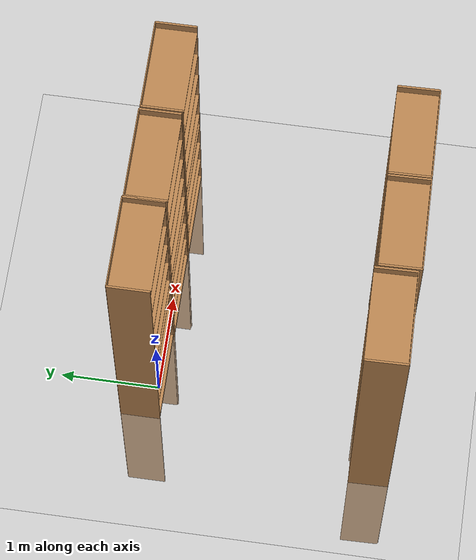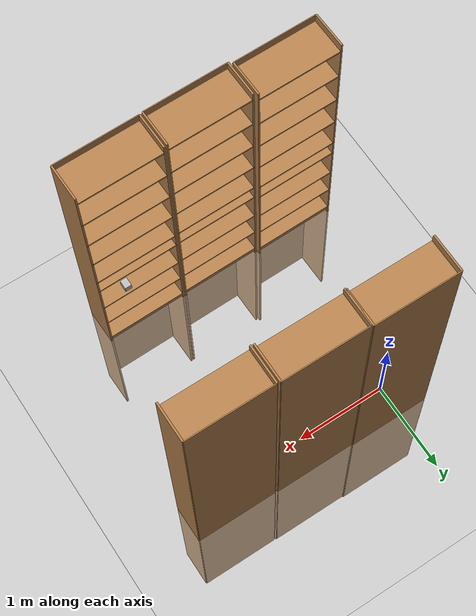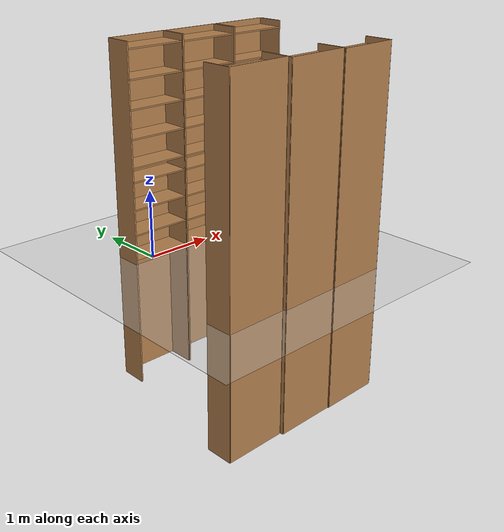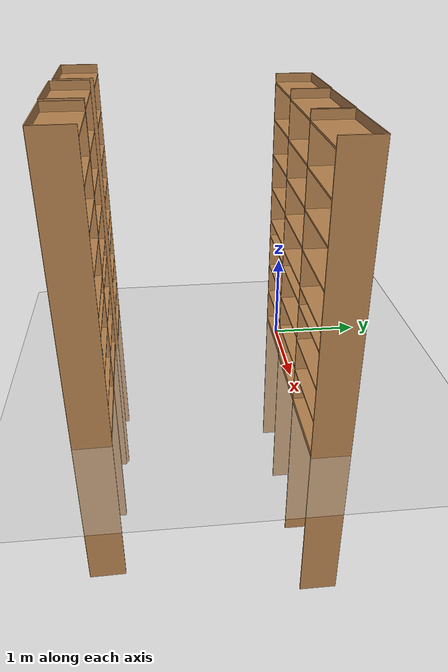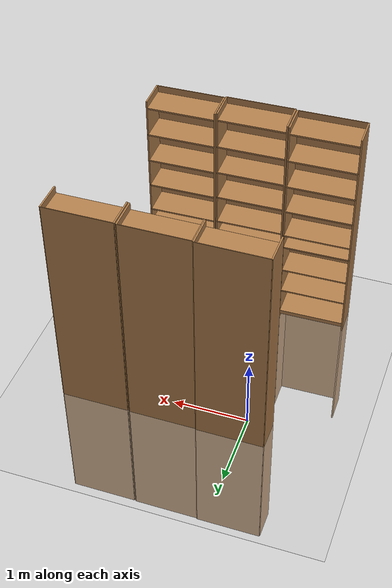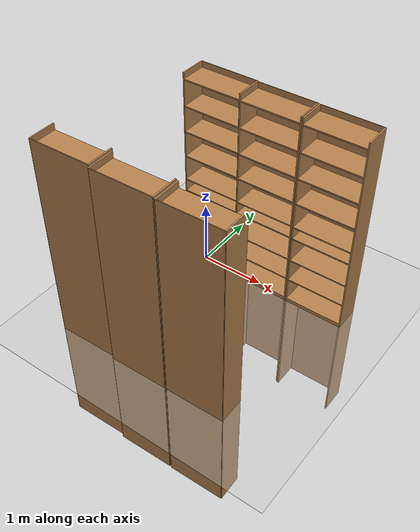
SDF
<sdf version="1.7">
 <world name="default">
  <model name="ground_plane">
   <static>1</static>
   <link name="link">
    <collision name="collision">
     <geometry><plane><normal>0 0 1</normal><size>100 100</size></plane></geometry>
     <surface><friction><ode><mu>100</mu><mu2>50</mu2></ode></friction></surface>
    </collision>
    <visual name="visual">
     <cast_shadows>0</cast_shadows>
     <geometry><plane><normal>0 0 1</normal><size>100 100</size></plane></geometry>
     <material>
      <script><uri>file://media/materials/scripts/gazebo.material</uri><name>Gazebo/Grey</name></script>
     </material>
    </visual>
   </link>
  </model>
  <light name="sun" type="directional">
   <pose>0 0 10 0 -0 0</pose>
   <diffuse>0.8 0.8 0.8 1</diffuse>
   <specular>0.2 0.2 0.2 1</specular>
   <attenuation>
    <range>1000</range>
    <constant>0.9</constant>
    <linear>0.01</linear>
    <quadratic>0.001</quadratic>
   </attenuation>
   <direction>-0.5 0.1 -0.9</direction>
   <spot><inner_angle>0</inner_angle><outer_angle>0</outer_angle><falloff>0</falloff></spot>
  </light>
  <scene><shadows>0</shadows><ambient>0.4 0.4 0.4 1</ambient><background>0.7 0.7 0.7 1</background></scene>
  <physics type="ode">
   <real_time_update_rate>1000</real_time_update_rate>
   <max_step_size>0.001</max_step_size>
   <real_time_factor>1</real_time_factor>
   <ode>
    <solver>
     <type>quick</type>
     <iters>150</iters>
     <precon_iters>0</precon_iters>
     <sor>1.4</sor>
     <use_dynamic_moi_rescaling>1</use_dynamic_moi_rescaling>
    </solver>
    <constraints>
     <cfm>1e-05</cfm>
     <erp>0.2</erp>
     <contact_max_correcting_vel>2000</contact_max_correcting_vel>
     <contact_surface_layer>0.01</contact_surface_layer>
    </constraints>
   </ode>
  </physics>
  <gravity>0 0 -9.8</gravity>
  <magnetic_field>6e-06 2.3e-05 -4.2e-05</magnetic_field>
  <atmosphere type="adiabatic"/>
  <audio><device>default</device></audio>
  <spherical_coordinates>
   <surface_model>EARTH_WGS84</surface_model>
   <latitude_deg>0</latitude_deg>
   <longitude_deg>0</longitude_deg>
   <elevation>0</elevation>
   <heading_deg>0</heading_deg>
  </spherical_coordinates>
  <model name="bookshelf_custom">
   <static>1</static>
   <link name="link">
    <inertial><mass>1</mass></inertial>
    <collision name="back">
     <pose>0 0.005 0.6 0 -0 0</pose>
     <geometry><box><size>0.9 0.01 5</size></box></geometry>
    </collision>
    <visual name="visual1">
     <pose>0 0.005 0.6 0 -0 0</pose>
     <geometry><box><size>0.9 0.01 5</size></box></geometry>
     <material>
      <script><uri>file://media/materials/scripts/gazebo.material</uri><name>Gazebo/Wood</name></script>
     </material>
    </visual>
    <collision name="left_side">
     <pose>0.45 -0.195 0.6 0 -0 0</pose>
     <geometry><box><size>0.02 0.4 5</size></box></geometry>
    </collision>
    <visual name="visual2">
     <pose>0.45 -0.195 0.6 0 -0 0</pose>
     <geometry><box><size>0.02 0.4 5</size></box></geometry>
     <material>
      <script><uri>file://media/materials/scripts/gazebo.material</uri><name>Gazebo/Wood</name></script>
     </material>
    </visual>
    <collision name="right_side">
     <pose>-0.45 -0.195 0.6 0 -0 0</pose>
     <geometry><box><size>0.02 0.4 5</size></box></geometry>
    </collision>
    <visual name="visual3">
     <pose>-0.45 -0.195 0.6 0 -0 0</pose>
     <geometry><box><size>0.02 0.4 5</size></box></geometry>
     <material>
      <script><uri>file://media/materials/scripts/gazebo.material</uri><name>Gazebo/Wood</name></script>
     </material>
    </visual>
    <collision name="bottom">
     <pose>0 -0.195 0.03 0 -0 0</pose>
     <geometry><box><size>0.88 0.4 0.06</size></box></geometry>
    </collision>
    <visual name="visual4">
     <pose>0 -0.195 0.03 0 -0 0</pose>
     <geometry><box><size>0.88 0.4 0.06</size></box></geometry>
     <material>
      <script><uri>file://media/materials/scripts/gazebo.material</uri><name>Gazebo/Wood</name></script>
     </material>
    </visual>
    <collision name="top">
     <pose>0 -0.195 3 0 -0 0</pose>
     <geometry><box><size>0.88 0.4 0.02</size></box></geometry>
    </collision>
    <visual name="visual5">
     <pose>0 -0.195 3 0 -0 0</pose>
     <geometry><box><size>0.88 0.4 0.02</size></box></geometry>
     <material>
      <script><uri>file://media/materials/scripts/gazebo.material</uri><name>Gazebo/Wood</name></script>
     </material>
    </visual>
    <collision name="low_shelf">
     <pose>0 -0.195 0.43 0 -0 0</pose>
     <geometry><box><size>0.88 0.4 0.02</size></box></geometry>
    </collision>
    <visual name="visual6">
     <pose>0 -0.195 0.43 0 -0 0</pose>
     <geometry><box><size>0.88 0.4 0.02</size></box></geometry>
     <material>
      <script><uri>file://media/materials/scripts/gazebo.material</uri><name>Gazebo/Wood</name></script>
     </material>
    </visual>
    <collision name="high_shelf">
     <pose>0 -0.195 0.8 0 -0 0</pose>
     <geometry><box><size>0.88 0.4 0.02</size></box></geometry>
    </collision>
    <visual name="visual7">
     <pose>0 -0.195 0.8 0 -0 0</pose>
     <geometry><box><size>0.88 0.4 0.02</size></box></geometry>
     <material>
      <script><uri>file://media/materials/scripts/gazebo.material</uri><name>Gazebo/Wood</name></script>
     </material>
    </visual>
    <collision name="shelf_1">
     <pose>0 -0.195 1.2 0 -0 0</pose>
     <geometry><box><size>0.9 0.4 0.02</size></box></geometry>
    </collision>
    <visual name="shelf_visual_1">
     <pose>0 -0.195 1.2 0 -0 0</pose>
     <geometry><box><size>0.9 0.4 0.02</size></box></geometry>
     <material>
      <script><uri>file://media/materials/scripts/gazebo.material</uri><name>Gazebo/Wood</name></script>
     </material>
    </visual>
    <collision name="shelf_2">
     <pose>0 -0.195 1.4 0 -0 0</pose>
     <geometry><box><size>0.9 0.4 0.02</size></box></geometry>
    </collision>
    <visual name="shelf_visual_2">
     <pose>0 -0.195 1.4 0 -0 0</pose>
     <geometry><box><size>0.9 0.4 0.02</size></box></geometry>
     <material>
      <script><uri>file://media/materials/scripts/gazebo.material</uri><name>Gazebo/Wood</name></script>
     </material>
    </visual>
    <collision name="shelf_3">
     <pose>0 -0.195 1.8 0 -0 0</pose>
     <geometry><box><size>0.9 0.4 0.02</size></box></geometry>
    </collision>
    <visual name="shelf_visual_3">
     <pose>0 -0.195 1.8 0 -0 0</pose>
     <geometry><box><size>0.9 0.4 0.02</size></box></geometry>
     <material>
      <script><uri>file://media/materials/scripts/gazebo.material</uri><name>Gazebo/Wood</name></script>
     </material>
    </visual>
    <collision name="shelf_4">
     <pose>0 -0.195 2.2 0 -0 0</pose>
     <geometry><box><size>0.9 0.4 0.02</size></box></geometry>
    </collision>
    <visual name="shelf_visual_4">
     <pose>0 -0.195 2.2 0 -0 0</pose>
     <geometry><box><size>0.9 0.4 0.02</size></box></geometry>
     <material>
      <script><uri>file://media/materials/scripts/gazebo.material</uri><name>Gazebo/Wood</name></script>
     </material>
    </visual>
    <collision name="shelf_5">
     <pose>0 -0.195 2.6 0 -0 0</pose>
     <geometry><box><size>0.9 0.4 0.02</size></box></geometry>
    </collision>
    <visual name="shelf_visual_5">
     <pose>0 -0.195 2.6 0 -0 0</pose>
     <geometry><box><size>0.9 0.4 0.02</size></box></geometry>
     <material>
      <script><uri>file://media/materials/scripts/gazebo.material</uri><name>Gazebo/Wood</name></script>
     </material>
    </visual>
   </link>
   <pose>0.132617 0.334854 0 0 -0 0</pose>
  </model>
  <model name="bookshelf_custom_0">
   <static>1</static>
   <link name="link">
    <inertial><mass>1</mass></inertial>
    <collision name="back">
     <pose>0 0.005 0.6 0 -0 0</pose>
     <geometry><box><size>0.9 0.01 5</size></box></geometry>
    </collision>
    <visual name="visual1">
     <pose>0 0.005 0.6 0 -0 0</pose>
     <geometry><box><size>0.9 0.01 5</size></box></geometry>
     <material>
      <script><uri>file://media/materials/scripts/gazebo.material</uri><name>Gazebo/Wood</name></script>
     </material>
    </visual>
    <collision name="left_side">
     <pose>0.45 -0.195 0.6 0 -0 0</pose>
     <geometry><box><size>0.02 0.4 5</size></box></geometry>
    </collision>
    <visual name="visual2">
     <pose>0.45 -0.195 0.6 0 -0 0</pose>
     <geometry><box><size>0.02 0.4 5</size></box></geometry>
     <material>
      <script><uri>file://media/materials/scripts/gazebo.material</uri><name>Gazebo/Wood</name></script>
     </material>
    </visual>
    <collision name="right_side">
     <pose>-0.45 -0.195 0.6 0 -0 0</pose>
     <geometry><box><size>0.02 0.4 5</size></box></geometry>
    </collision>
    <visual name="visual3">
     <pose>-0.45 -0.195 0.6 0 -0 0</pose>
     <geometry><box><size>0.02 0.4 5</size></box></geometry>
     <material>
      <script><uri>file://media/materials/scripts/gazebo.material</uri><name>Gazebo/Wood</name></script>
     </material>
    </visual>
    <collision name="bottom">
     <pose>0 -0.195 0.03 0 -0 0</pose>
     <geometry><box><size>0.88 0.4 0.06</size></box></geometry>
    </collision>
    <visual name="visual4">
     <pose>0 -0.195 0.03 0 -0 0</pose>
     <geometry><box><size>0.88 0.4 0.06</size></box></geometry>
     <material>
      <script><uri>file://media/materials/scripts/gazebo.material</uri><name>Gazebo/Wood</name></script>
     </material>
    </visual>
    <collision name="top">
     <pose>0 -0.195 3 0 -0 0</pose>
     <geometry><box><size>0.88 0.4 0.02</size></box></geometry>
    </collision>
    <visual name="visual5">
     <pose>0 -0.195 3 0 -0 0</pose>
     <geometry><box><size>0.88 0.4 0.02</size></box></geometry>
     <material>
      <script><uri>file://media/materials/scripts/gazebo.material</uri><name>Gazebo/Wood</name></script>
     </material>
    </visual>
    <collision name="low_shelf">
     <pose>0 -0.195 0.43 0 -0 0</pose>
     <geometry><box><size>0.88 0.4 0.02</size></box></geometry>
    </collision>
    <visual name="visual6">
     <pose>0 -0.195 0.43 0 -0 0</pose>
     <geometry><box><size>0.88 0.4 0.02</size></box></geometry>
     <material>
      <script><uri>file://media/materials/scripts/gazebo.material</uri><name>Gazebo/Wood</name></script>
     </material>
    </visual>
    <collision name="high_shelf">
     <pose>0 -0.195 0.8 0 -0 0</pose>
     <geometry><box><size>0.88 0.4 0.02</size></box></geometry>
    </collision>
    <visual name="visual7">
     <pose>0 -0.195 0.8 0 -0 0</pose>
     <geometry><box><size>0.88 0.4 0.02</size></box></geometry>
     <material>
      <script><uri>file://media/materials/scripts/gazebo.material</uri><name>Gazebo/Wood</name></script>
     </material>
    </visual>
    <collision name="shelf_1">
     <pose>0 -0.195 1.2 0 -0 0</pose>
     <geometry><box><size>0.9 0.4 0.02</size></box></geometry>
    </collision>
    <visual name="shelf_visual_1">
     <pose>0 -0.195 1.2 0 -0 0</pose>
     <geometry><box><size>0.9 0.4 0.02</size></box></geometry>
     <material>
      <script><uri>file://media/materials/scripts/gazebo.material</uri><name>Gazebo/Wood</name></script>
     </material>
    </visual>
    <collision name="shelf_2">
     <pose>0 -0.195 1.4 0 -0 0</pose>
     <geometry><box><size>0.9 0.4 0.02</size></box></geometry>
    </collision>
    <visual name="shelf_visual_2">
     <pose>0 -0.195 1.4 0 -0 0</pose>
     <geometry><box><size>0.9 0.4 0.02</size></box></geometry>
     <material>
      <script><uri>file://media/materials/scripts/gazebo.material</uri><name>Gazebo/Wood</name></script>
     </material>
    </visual>
    <collision name="shelf_3">
     <pose>0 -0.195 1.8 0 -0 0</pose>
     <geometry><box><size>0.9 0.4 0.02</size></box></geometry>
    </collision>
    <visual name="shelf_visual_3">
     <pose>0 -0.195 1.8 0 -0 0</pose>
     <geometry><box><size>0.9 0.4 0.02</size></box></geometry>
     <material>
      <script><uri>file://media/materials/scripts/gazebo.material</uri><name>Gazebo/Wood</name></script>
     </material>
    </visual>
    <collision name="shelf_4">
     <pose>0 -0.195 2.2 0 -0 0</pose>
     <geometry><box><size>0.9 0.4 0.02</size></box></geometry>
    </collision>
    <visual name="shelf_visual_4">
     <pose>0 -0.195 2.2 0 -0 0</pose>
     <geometry><box><size>0.9 0.4 0.02</size></box></geometry>
     <material>
      <script><uri>file://media/materials/scripts/gazebo.material</uri><name>Gazebo/Wood</name></script>
     </material>
    </visual>
    <collision name="shelf_5">
     <pose>0 -0.195 2.6 0 -0 0</pose>
     <geometry><box><size>0.9 0.4 0.02</size></box></geometry>
    </collision>
    <visual name="shelf_visual_5">
     <pose>0 -0.195 2.6 0 -0 0</pose>
     <geometry><box><size>0.9 0.4 0.02</size></box></geometry>
     <material>
      <script><uri>file://media/materials/scripts/gazebo.material</uri><name>Gazebo/Wood</name></script>
     </material>
    </visual>
   </link>
   <pose>1.04428 0.322976 0 0 -0 0</pose>
  </model>
  <model name="bookshelf_custom_1">
   <static>1</static>
   <link name="link">
    <inertial><mass>1</mass></inertial>
    <collision name="back">
     <pose>0 0.005 0.6 0 -0 0</pose>
     <geometry><box><size>0.9 0.01 5</size></box></geometry>
    </collision>
    <visual name="visual1">
     <pose>0 0.005 0.6 0 -0 0</pose>
     <geometry><box><size>0.9 0.01 5</size></box></geometry>
     <material>
      <script><uri>file://media/materials/scripts/gazebo.material</uri><name>Gazebo/Wood</name></script>
     </material>
    </visual>
    <collision name="left_side">
     <pose>0.45 -0.195 0.6 0 -0 0</pose>
     <geometry><box><size>0.02 0.4 5</size></box></geometry>
    </collision>
    <visual name="visual2">
     <pose>0.45 -0.195 0.6 0 -0 0</pose>
     <geometry><box><size>0.02 0.4 5</size></box></geometry>
     <material>
      <script><uri>file://media/materials/scripts/gazebo.material</uri><name>Gazebo/Wood</name></script>
     </material>
    </visual>
    <collision name="right_side">
     <pose>-0.45 -0.195 0.6 0 -0 0</pose>
     <geometry><box><size>0.02 0.4 5</size></box></geometry>
    </collision>
    <visual name="visual3">
     <pose>-0.45 -0.195 0.6 0 -0 0</pose>
     <geometry><box><size>0.02 0.4 5</size></box></geometry>
     <material>
      <script><uri>file://media/materials/scripts/gazebo.material</uri><name>Gazebo/Wood</name></script>
     </material>
    </visual>
    <collision name="bottom">
     <pose>0 -0.195 0.03 0 -0 0</pose>
     <geometry><box><size>0.88 0.4 0.06</size></box></geometry>
    </collision>
    <visual name="visual4">
     <pose>0 -0.195 0.03 0 -0 0</pose>
     <geometry><box><size>0.88 0.4 0.06</size></box></geometry>
     <material>
      <script><uri>file://media/materials/scripts/gazebo.material</uri><name>Gazebo/Wood</name></script>
     </material>
    </visual>
    <collision name="top">
     <pose>0 -0.195 3 0 -0 0</pose>
     <geometry><box><size>0.88 0.4 0.02</size></box></geometry>
    </collision>
    <visual name="visual5">
     <pose>0 -0.195 3 0 -0 0</pose>
     <geometry><box><size>0.88 0.4 0.02</size></box></geometry>
     <material>
      <script><uri>file://media/materials/scripts/gazebo.material</uri><name>Gazebo/Wood</name></script>
     </material>
    </visual>
    <collision name="low_shelf">
     <pose>0 -0.195 0.43 0 -0 0</pose>
     <geometry><box><size>0.88 0.4 0.02</size></box></geometry>
    </collision>
    <visual name="visual6">
     <pose>0 -0.195 0.43 0 -0 0</pose>
     <geometry><box><size>0.88 0.4 0.02</size></box></geometry>
     <material>
      <script><uri>file://media/materials/scripts/gazebo.material</uri><name>Gazebo/Wood</name></script>
     </material>
    </visual>
    <collision name="high_shelf">
     <pose>0 -0.195 0.8 0 -0 0</pose>
     <geometry><box><size>0.88 0.4 0.02</size></box></geometry>
    </collision>
    <visual name="visual7">
     <pose>0 -0.195 0.8 0 -0 0</pose>
     <geometry><box><size>0.88 0.4 0.02</size></box></geometry>
     <material>
      <script><uri>file://media/materials/scripts/gazebo.material</uri><name>Gazebo/Wood</name></script>
     </material>
    </visual>
    <collision name="shelf_1">
     <pose>0 -0.195 1.2 0 -0 0</pose>
     <geometry><box><size>0.9 0.4 0.02</size></box></geometry>
    </collision>
    <visual name="shelf_visual_1">
     <pose>0 -0.195 1.2 0 -0 0</pose>
     <geometry><box><size>0.9 0.4 0.02</size></box></geometry>
     <material>
      <script><uri>file://media/materials/scripts/gazebo.material</uri><name>Gazebo/Wood</name></script>
     </material>
    </visual>
    <collision name="shelf_2">
     <pose>0 -0.195 1.4 0 -0 0</pose>
     <geometry><box><size>0.9 0.4 0.02</size></box></geometry>
    </collision>
    <visual name="shelf_visual_2">
     <pose>0 -0.195 1.4 0 -0 0</pose>
     <geometry><box><size>0.9 0.4 0.02</size></box></geometry>
     <material>
      <script><uri>file://media/materials/scripts/gazebo.material</uri><name>Gazebo/Wood</name></script>
     </material>
    </visual>
    <collision name="shelf_3">
     <pose>0 -0.195 1.8 0 -0 0</pose>
     <geometry><box><size>0.9 0.4 0.02</size></box></geometry>
    </collision>
    <visual name="shelf_visual_3">
     <pose>0 -0.195 1.8 0 -0 0</pose>
     <geometry><box><size>0.9 0.4 0.02</size></box></geometry>
     <material>
      <script><uri>file://media/materials/scripts/gazebo.material</uri><name>Gazebo/Wood</name></script>
     </material>
    </visual>
    <collision name="shelf_4">
     <pose>0 -0.195 2.2 0 -0 0</pose>
     <geometry><box><size>0.9 0.4 0.02</size></box></geometry>
    </collision>
    <visual name="shelf_visual_4">
     <pose>0 -0.195 2.2 0 -0 0</pose>
     <geometry><box><size>0.9 0.4 0.02</size></box></geometry>
     <material>
      <script><uri>file://media/materials/scripts/gazebo.material</uri><name>Gazebo/Wood</name></script>
     </material>
    </visual>
    <collision name="shelf_5">
     <pose>0 -0.195 2.6 0 -0 0</pose>
     <geometry><box><size>0.9 0.4 0.02</size></box></geometry>
    </collision>
    <visual name="shelf_visual_5">
     <pose>0 -0.195 2.6 0 -0 0</pose>
     <geometry><box><size>0.9 0.4 0.02</size></box></geometry>
     <material>
      <script><uri>file://media/materials/scripts/gazebo.material</uri><name>Gazebo/Wood</name></script>
     </material>
    </visual>
   </link>
   <pose>1.97615 0.315546 0 0 -0 0</pose>
  </model>
  <model name="bookshelf_custom_1_clone">
   <static>1</static>
   <link name="link">
    <inertial><mass>1</mass></inertial>
    <collision name="back">
     <pose>0 0.005 0.6 0 -0 0</pose>
     <geometry><box><size>0.9 0.01 5</size></box></geometry>
    </collision>
    <visual name="visual1">
     <pose>0 0.005 0.6 0 -0 0</pose>
     <geometry><box><size>0.9 0.01 5</size></box></geometry>
     <material>
      <script><uri>file://media/materials/scripts/gazebo.material</uri><name>Gazebo/Wood</name></script>
     </material>
    </visual>
    <collision name="left_side">
     <pose>0.45 -0.195 0.6 0 -0 0</pose>
     <geometry><box><size>0.02 0.4 5</size></box></geometry>
    </collision>
    <visual name="visual2">
     <pose>0.45 -0.195 0.6 0 -0 0</pose>
     <geometry><box><size>0.02 0.4 5</size></box></geometry>
     <material>
      <script><uri>file://media/materials/scripts/gazebo.material</uri><name>Gazebo/Wood</name></script>
     </material>
    </visual>
    <collision name="right_side">
     <pose>-0.45 -0.195 0.6 0 -0 0</pose>
     <geometry><box><size>0.02 0.4 5</size></box></geometry>
    </collision>
    <visual name="visual3">
     <pose>-0.45 -0.195 0.6 0 -0 0</pose>
     <geometry><box><size>0.02 0.4 5</size></box></geometry>
     <material>
      <script><uri>file://media/materials/scripts/gazebo.material</uri><name>Gazebo/Wood</name></script>
     </material>
    </visual>
    <collision name="bottom">
     <pose>0 -0.195 0.03 0 -0 0</pose>
     <geometry><box><size>0.88 0.4 0.06</size></box></geometry>
    </collision>
    <visual name="visual4">
     <pose>0 -0.195 0.03 0 -0 0</pose>
     <geometry><box><size>0.88 0.4 0.06</size></box></geometry>
     <material>
      <script><uri>file://media/materials/scripts/gazebo.material</uri><name>Gazebo/Wood</name></script>
     </material>
    </visual>
    <collision name="top">
     <pose>0 -0.195 3 0 -0 0</pose>
     <geometry><box><size>0.88 0.4 0.02</size></box></geometry>
    </collision>
    <visual name="visual5">
     <pose>0 -0.195 3 0 -0 0</pose>
     <geometry><box><size>0.88 0.4 0.02</size></box></geometry>
     <material>
      <script><uri>file://media/materials/scripts/gazebo.material</uri><name>Gazebo/Wood</name></script>
     </material>
    </visual>
    <collision name="low_shelf">
     <pose>0 -0.195 0.43 0 -0 0</pose>
     <geometry><box><size>0.88 0.4 0.02</size></box></geometry>
    </collision>
    <visual name="visual6">
     <pose>0 -0.195 0.43 0 -0 0</pose>
     <geometry><box><size>0.88 0.4 0.02</size></box></geometry>
     <material>
      <script><uri>file://media/materials/scripts/gazebo.material</uri><name>Gazebo/Wood</name></script>
     </material>
    </visual>
    <collision name="high_shelf">
     <pose>0 -0.195 0.8 0 -0 0</pose>
     <geometry><box><size>0.88 0.4 0.02</size></box></geometry>
    </collision>
    <visual name="visual7">
     <pose>0 -0.195 0.8 0 -0 0</pose>
     <geometry><box><size>0.88 0.4 0.02</size></box></geometry>
     <material>
      <script><uri>file://media/materials/scripts/gazebo.material</uri><name>Gazebo/Wood</name></script>
     </material>
    </visual>
    <collision name="shelf_1">
     <pose>0 -0.195 1.2 0 -0 0</pose>
     <geometry><box><size>0.9 0.4 0.02</size></box></geometry>
    </collision>
    <visual name="shelf_visual_1">
     <pose>0 -0.195 1.2 0 -0 0</pose>
     <geometry><box><size>0.9 0.4 0.02</size></box></geometry>
     <material>
      <script><uri>file://media/materials/scripts/gazebo.material</uri><name>Gazebo/Wood</name></script>
     </material>
    </visual>
    <collision name="shelf_2">
     <pose>0 -0.195 1.4 0 -0 0</pose>
     <geometry><box><size>0.9 0.4 0.02</size></box></geometry>
    </collision>
    <visual name="shelf_visual_2">
     <pose>0 -0.195 1.4 0 -0 0</pose>
     <geometry><box><size>0.9 0.4 0.02</size></box></geometry>
     <material>
      <script><uri>file://media/materials/scripts/gazebo.material</uri><name>Gazebo/Wood</name></script>
     </material>
    </visual>
    <collision name="shelf_3">
     <pose>0 -0.195 1.8 0 -0 0</pose>
     <geometry><box><size>0.9 0.4 0.02</size></box></geometry>
    </collision>
    <visual name="shelf_visual_3">
     <pose>0 -0.195 1.8 0 -0 0</pose>
     <geometry><box><size>0.9 0.4 0.02</size></box></geometry>
     <material>
      <script><uri>file://media/materials/scripts/gazebo.material</uri><name>Gazebo/Wood</name></script>
     </material>
    </visual>
    <collision name="shelf_4">
     <pose>0 -0.195 2.2 0 -0 0</pose>
     <geometry><box><size>0.9 0.4 0.02</size></box></geometry>
    </collision>
    <visual name="shelf_visual_4">
     <pose>0 -0.195 2.2 0 -0 0</pose>
     <geometry><box><size>0.9 0.4 0.02</size></box></geometry>
     <material>
      <script><uri>file://media/materials/scripts/gazebo.material</uri><name>Gazebo/Wood</name></script>
     </material>
    </visual>
    <collision name="shelf_5">
     <pose>0 -0.195 2.6 0 -0 0</pose>
     <geometry><box><size>0.9 0.4 0.02</size></box></geometry>
    </collision>
    <visual name="shelf_visual_5">
     <pose>0 -0.195 2.6 0 -0 0</pose>
     <geometry><box><size>0.9 0.4 0.02</size></box></geometry>
     <material>
      <script><uri>file://media/materials/scripts/gazebo.material</uri><name>Gazebo/Wood</name></script>
     </material>
    </visual>
   </link>
   <pose>-0.269059 -2.40325 0.065376 0 0 -3.12378</pose>
  </model>
  <model name="bookshelf_custom_1_clone_clone">
   <static>1</static>
   <link name="link">
    <inertial><mass>1</mass></inertial>
    <collision name="back">
     <pose>0 0.005 0.6 0 -0 0</pose>
     <geometry><box><size>0.9 0.01 5</size></box></geometry>
    </collision>
    <visual name="visual1">
     <pose>0 0.005 0.6 0 -0 0</pose>
     <geometry><box><size>0.9 0.01 5</size></box></geometry>
     <material>
      <script><uri>file://media/materials/scripts/gazebo.material</uri><name>Gazebo/Wood</name></script>
     </material>
    </visual>
    <collision name="left_side">
     <pose>0.45 -0.195 0.6 0 -0 0</pose>
     <geometry><box><size>0.02 0.4 5</size></box></geometry>
    </collision>
    <visual name="visual2">
     <pose>0.45 -0.195 0.6 0 -0 0</pose>
     <geometry><box><size>0.02 0.4 5</size></box></geometry>
     <material>
      <script><uri>file://media/materials/scripts/gazebo.material</uri><name>Gazebo/Wood</name></script>
     </material>
    </visual>
    <collision name="right_side">
     <pose>-0.45 -0.195 0.6 0 -0 0</pose>
     <geometry><box><size>0.02 0.4 5</size></box></geometry>
    </collision>
    <visual name="visual3">
     <pose>-0.45 -0.195 0.6 0 -0 0</pose>
     <geometry><box><size>0.02 0.4 5</size></box></geometry>
     <material>
      <script><uri>file://media/materials/scripts/gazebo.material</uri><name>Gazebo/Wood</name></script>
     </material>
    </visual>
    <collision name="bottom">
     <pose>0 -0.195 0.03 0 -0 0</pose>
     <geometry><box><size>0.88 0.4 0.06</size></box></geometry>
    </collision>
    <visual name="visual4">
     <pose>0 -0.195 0.03 0 -0 0</pose>
     <geometry><box><size>0.88 0.4 0.06</size></box></geometry>
     <material>
      <script><uri>file://media/materials/scripts/gazebo.material</uri><name>Gazebo/Wood</name></script>
     </material>
    </visual>
    <collision name="top">
     <pose>0 -0.195 3 0 -0 0</pose>
     <geometry><box><size>0.88 0.4 0.02</size></box></geometry>
    </collision>
    <visual name="visual5">
     <pose>0 -0.195 3 0 -0 0</pose>
     <geometry><box><size>0.88 0.4 0.02</size></box></geometry>
     <material>
      <script><uri>file://media/materials/scripts/gazebo.material</uri><name>Gazebo/Wood</name></script>
     </material>
    </visual>
    <collision name="low_shelf">
     <pose>0 -0.195 0.43 0 -0 0</pose>
     <geometry><box><size>0.88 0.4 0.02</size></box></geometry>
    </collision>
    <visual name="visual6">
     <pose>0 -0.195 0.43 0 -0 0</pose>
     <geometry><box><size>0.88 0.4 0.02</size></box></geometry>
     <material>
      <script><uri>file://media/materials/scripts/gazebo.material</uri><name>Gazebo/Wood</name></script>
     </material>
    </visual>
    <collision name="high_shelf">
     <pose>0 -0.195 0.8 0 -0 0</pose>
     <geometry><box><size>0.88 0.4 0.02</size></box></geometry>
    </collision>
    <visual name="visual7">
     <pose>0 -0.195 0.8 0 -0 0</pose>
     <geometry><box><size>0.88 0.4 0.02</size></box></geometry>
     <material>
      <script><uri>file://media/materials/scripts/gazebo.material</uri><name>Gazebo/Wood</name></script>
     </material>
    </visual>
    <collision name="shelf_1">
     <pose>0 -0.195 1.2 0 -0 0</pose>
     <geometry><box><size>0.9 0.4 0.02</size></box></geometry>
    </collision>
    <visual name="shelf_visual_1">
     <pose>0 -0.195 1.2 0 -0 0</pose>
     <geometry><box><size>0.9 0.4 0.02</size></box></geometry>
     <material>
      <script><uri>file://media/materials/scripts/gazebo.material</uri><name>Gazebo/Wood</name></script>
     </material>
    </visual>
    <collision name="shelf_2">
     <pose>0 -0.195 1.4 0 -0 0</pose>
     <geometry><box><size>0.9 0.4 0.02</size></box></geometry>
    </collision>
    <visual name="shelf_visual_2">
     <pose>0 -0.195 1.4 0 -0 0</pose>
     <geometry><box><size>0.9 0.4 0.02</size></box></geometry>
     <material>
      <script><uri>file://media/materials/scripts/gazebo.material</uri><name>Gazebo/Wood</name></script>
     </material>
    </visual>
    <collision name="shelf_3">
     <pose>0 -0.195 1.8 0 -0 0</pose>
     <geometry><box><size>0.9 0.4 0.02</size></box></geometry>
    </collision>
    <visual name="shelf_visual_3">
     <pose>0 -0.195 1.8 0 -0 0</pose>
     <geometry><box><size>0.9 0.4 0.02</size></box></geometry>
     <material>
      <script><uri>file://media/materials/scripts/gazebo.material</uri><name>Gazebo/Wood</name></script>
     </material>
    </visual>
    <collision name="shelf_4">
     <pose>0 -0.195 2.2 0 -0 0</pose>
     <geometry><box><size>0.9 0.4 0.02</size></box></geometry>
    </collision>
    <visual name="shelf_visual_4">
     <pose>0 -0.195 2.2 0 -0 0</pose>
     <geometry><box><size>0.9 0.4 0.02</size></box></geometry>
     <material>
      <script><uri>file://media/materials/scripts/gazebo.material</uri><name>Gazebo/Wood</name></script>
     </material>
    </visual>
    <collision name="shelf_5">
     <pose>0 -0.195 2.6 0 -0 0</pose>
     <geometry><box><size>0.9 0.4 0.02</size></box></geometry>
    </collision>
    <visual name="shelf_visual_5">
     <pose>0 -0.195 2.6 0 -0 0</pose>
     <geometry><box><size>0.9 0.4 0.02</size></box></geometry>
     <material>
      <script><uri>file://media/materials/scripts/gazebo.material</uri><name>Gazebo/Wood</name></script>
     </material>
    </visual>
   </link>
   <pose>0.666345 -2.42055 0.054174 0 0 -3.12378</pose>
  </model>
  <model name="bookshelf_custom_1_clone_clone_0">
   <static>1</static>
   <link name="link">
    <inertial><mass>1</mass></inertial>
    <collision name="back">
     <pose>0 0.005 0.6 0 -0 0</pose>
     <geometry><box><size>0.9 0.01 5</size></box></geometry>
    </collision>
    <visual name="visual1">
     <pose>0 0.005 0.6 0 -0 0</pose>
     <geometry><box><size>0.9 0.01 5</size></box></geometry>
     <material>
      <script><uri>file://media/materials/scripts/gazebo.material</uri><name>Gazebo/Wood</name></script>
     </material>
    </visual>
    <collision name="left_side">
     <pose>0.45 -0.195 0.6 0 -0 0</pose>
     <geometry><box><size>0.02 0.4 5</size></box></geometry>
    </collision>
    <visual name="visual2">
     <pose>0.45 -0.195 0.6 0 -0 0</pose>
     <geometry><box><size>0.02 0.4 5</size></box></geometry>
     <material>
      <script><uri>file://media/materials/scripts/gazebo.material</uri><name>Gazebo/Wood</name></script>
     </material>
    </visual>
    <collision name="right_side">
     <pose>-0.45 -0.195 0.6 0 -0 0</pose>
     <geometry><box><size>0.02 0.4 5</size></box></geometry>
    </collision>
    <visual name="visual3">
     <pose>-0.45 -0.195 0.6 0 -0 0</pose>
     <geometry><box><size>0.02 0.4 5</size></box></geometry>
     <material>
      <script><uri>file://media/materials/scripts/gazebo.material</uri><name>Gazebo/Wood</name></script>
     </material>
    </visual>
    <collision name="bottom">
     <pose>0 -0.195 0.03 0 -0 0</pose>
     <geometry><box><size>0.88 0.4 0.06</size></box></geometry>
    </collision>
    <visual name="visual4">
     <pose>0 -0.195 0.03 0 -0 0</pose>
     <geometry><box><size>0.88 0.4 0.06</size></box></geometry>
     <material>
      <script><uri>file://media/materials/scripts/gazebo.material</uri><name>Gazebo/Wood</name></script>
     </material>
    </visual>
    <collision name="top">
     <pose>0 -0.195 3 0 -0 0</pose>
     <geometry><box><size>0.88 0.4 0.02</size></box></geometry>
    </collision>
    <visual name="visual5">
     <pose>0 -0.195 3 0 -0 0</pose>
     <geometry><box><size>0.88 0.4 0.02</size></box></geometry>
     <material>
      <script><uri>file://media/materials/scripts/gazebo.material</uri><name>Gazebo/Wood</name></script>
     </material>
    </visual>
    <collision name="low_shelf">
     <pose>0 -0.195 0.43 0 -0 0</pose>
     <geometry><box><size>0.88 0.4 0.02</size></box></geometry>
    </collision>
    <visual name="visual6">
     <pose>0 -0.195 0.43 0 -0 0</pose>
     <geometry><box><size>0.88 0.4 0.02</size></box></geometry>
     <material>
      <script><uri>file://media/materials/scripts/gazebo.material</uri><name>Gazebo/Wood</name></script>
     </material>
    </visual>
    <collision name="high_shelf">
     <pose>0 -0.195 0.8 0 -0 0</pose>
     <geometry><box><size>0.88 0.4 0.02</size></box></geometry>
    </collision>
    <visual name="visual7">
     <pose>0 -0.195 0.8 0 -0 0</pose>
     <geometry><box><size>0.88 0.4 0.02</size></box></geometry>
     <material>
      <script><uri>file://media/materials/scripts/gazebo.material</uri><name>Gazebo/Wood</name></script>
     </material>
    </visual>
    <collision name="shelf_1">
     <pose>0 -0.195 1.2 0 -0 0</pose>
     <geometry><box><size>0.9 0.4 0.02</size></box></geometry>
    </collision>
    <visual name="shelf_visual_1">
     <pose>0 -0.195 1.2 0 -0 0</pose>
     <geometry><box><size>0.9 0.4 0.02</size></box></geometry>
     <material>
      <script><uri>file://media/materials/scripts/gazebo.material</uri><name>Gazebo/Wood</name></script>
     </material>
    </visual>
    <collision name="shelf_2">
     <pose>0 -0.195 1.4 0 -0 0</pose>
     <geometry><box><size>0.9 0.4 0.02</size></box></geometry>
    </collision>
    <visual name="shelf_visual_2">
     <pose>0 -0.195 1.4 0 -0 0</pose>
     <geometry><box><size>0.9 0.4 0.02</size></box></geometry>
     <material>
      <script><uri>file://media/materials/scripts/gazebo.material</uri><name>Gazebo/Wood</name></script>
     </material>
    </visual>
    <collision name="shelf_3">
     <pose>0 -0.195 1.8 0 -0 0</pose>
     <geometry><box><size>0.9 0.4 0.02</size></box></geometry>
    </collision>
    <visual name="shelf_visual_3">
     <pose>0 -0.195 1.8 0 -0 0</pose>
     <geometry><box><size>0.9 0.4 0.02</size></box></geometry>
     <material>
      <script><uri>file://media/materials/scripts/gazebo.material</uri><name>Gazebo/Wood</name></script>
     </material>
    </visual>
    <collision name="shelf_4">
     <pose>0 -0.195 2.2 0 -0 0</pose>
     <geometry><box><size>0.9 0.4 0.02</size></box></geometry>
    </collision>
    <visual name="shelf_visual_4">
     <pose>0 -0.195 2.2 0 -0 0</pose>
     <geometry><box><size>0.9 0.4 0.02</size></box></geometry>
     <material>
      <script><uri>file://media/materials/scripts/gazebo.material</uri><name>Gazebo/Wood</name></script>
     </material>
    </visual>
    <collision name="shelf_5">
     <pose>0 -0.195 2.6 0 -0 0</pose>
     <geometry><box><size>0.9 0.4 0.02</size></box></geometry>
    </collision>
    <visual name="shelf_visual_5">
     <pose>0 -0.195 2.6 0 -0 0</pose>
     <geometry><box><size>0.9 0.4 0.02</size></box></geometry>
     <material>
      <script><uri>file://media/materials/scripts/gazebo.material</uri><name>Gazebo/Wood</name></script>
     </material>
    </visual>
   </link>
   <pose>1.59763 -2.40468 0.040113 0 0 -3.12378</pose>
  </model>
  <model name="vicks">
   <pose>1.72564 -2.08503 0.887614 0.013631 1.57077 1.5836</pose>
   <static>0</static>
   <link name="link">
    <collision name="collision">
     <geometry><box><size>0.075 0.075 0.1</size></box></geometry>
     <surface>
      <contact><stiffness>1e4</stiffness><damping>1e2</damping></contact>
      <friction><ode><mu>0.8</mu><mu2>0.8</mu2></ode></friction>
     </surface>
    </collision>
    <visual name="visual">
     <geometry><mesh><uri>model://vicks/meshes/mesh.dae</uri><scale>0.0125 0.0125 0.05</scale></mesh></geometry>
    </visual>
    <inertial>
     <inertia><ixx>1</ixx><ixy>0</ixy><ixz>0</ixz><iyy>1</iyy><iyz>0</iyz><izz>1</izz></inertia>
     <mass>1</mass>
    </inertial>
   </link>
  </model>
 </world>
</sdf>
